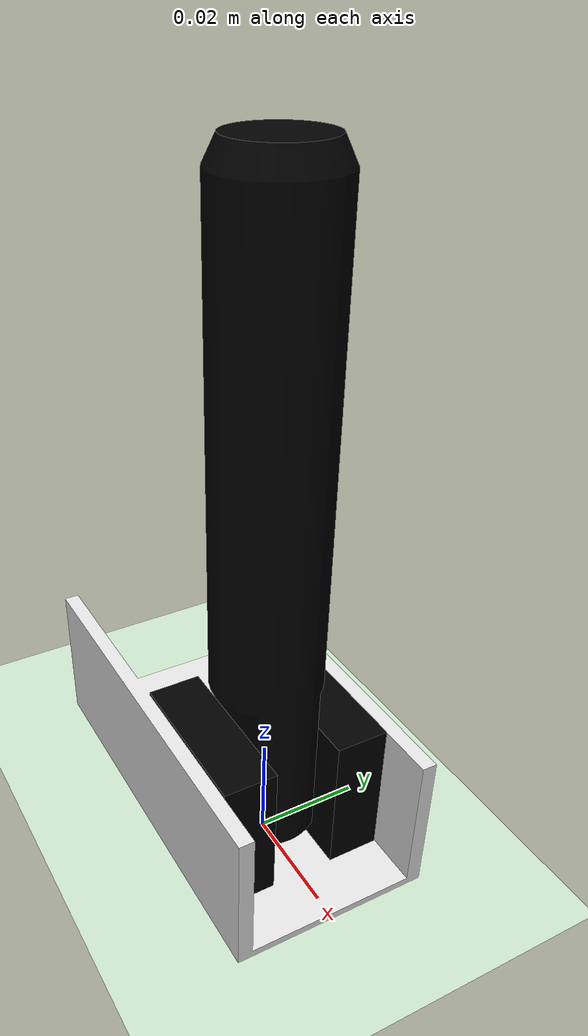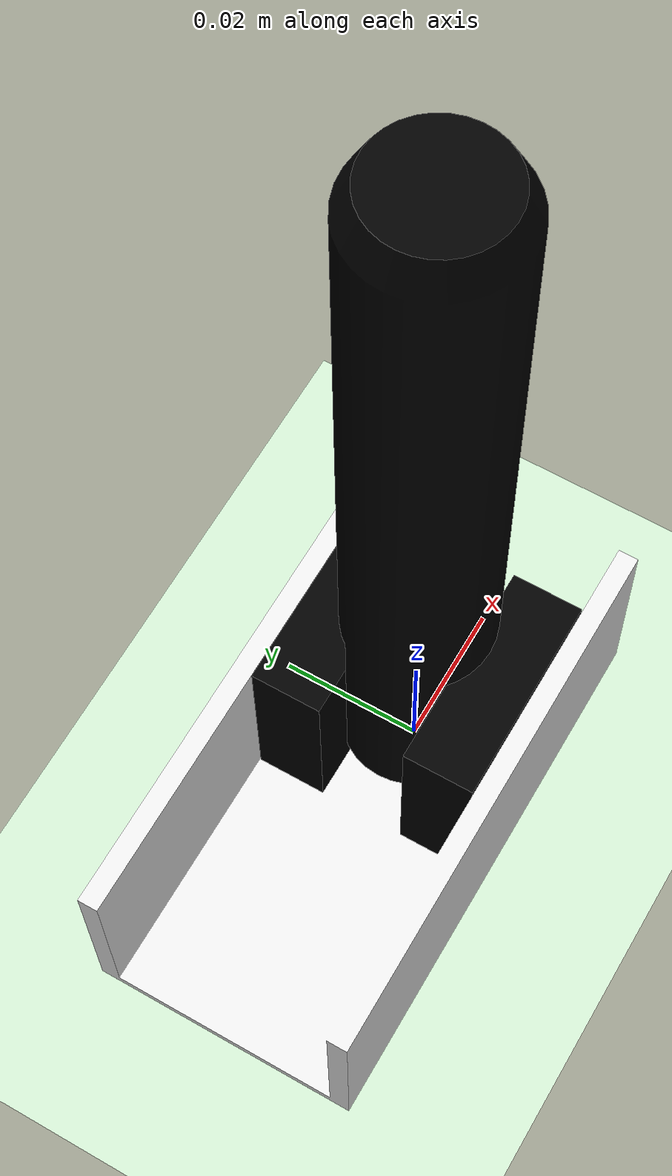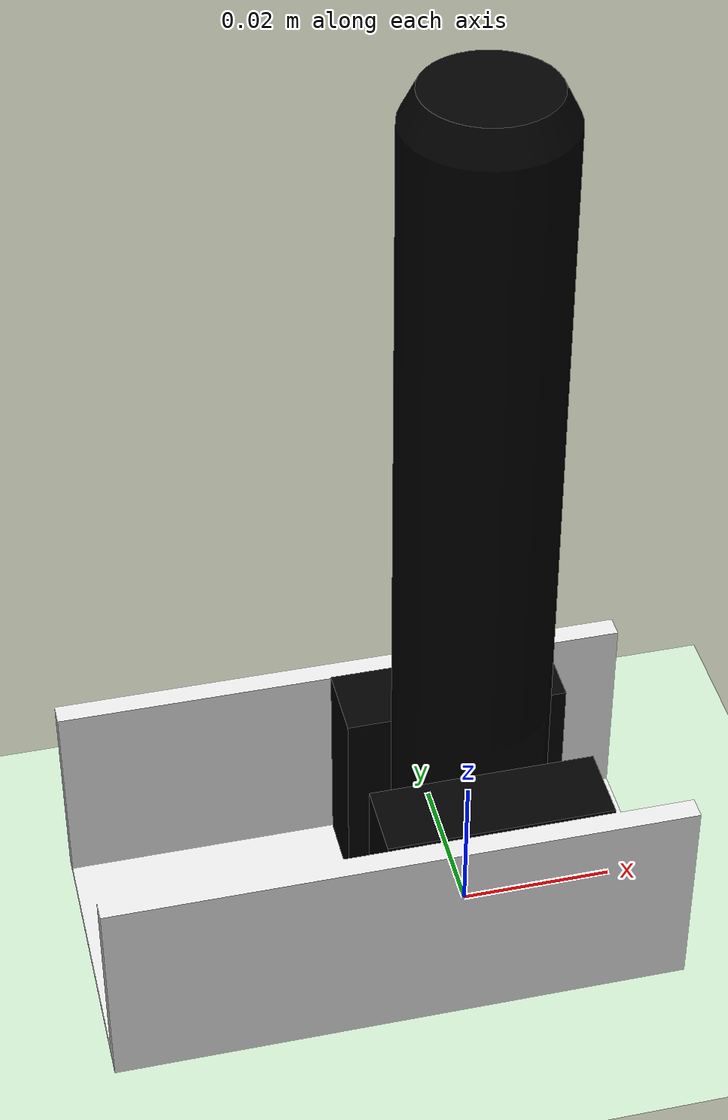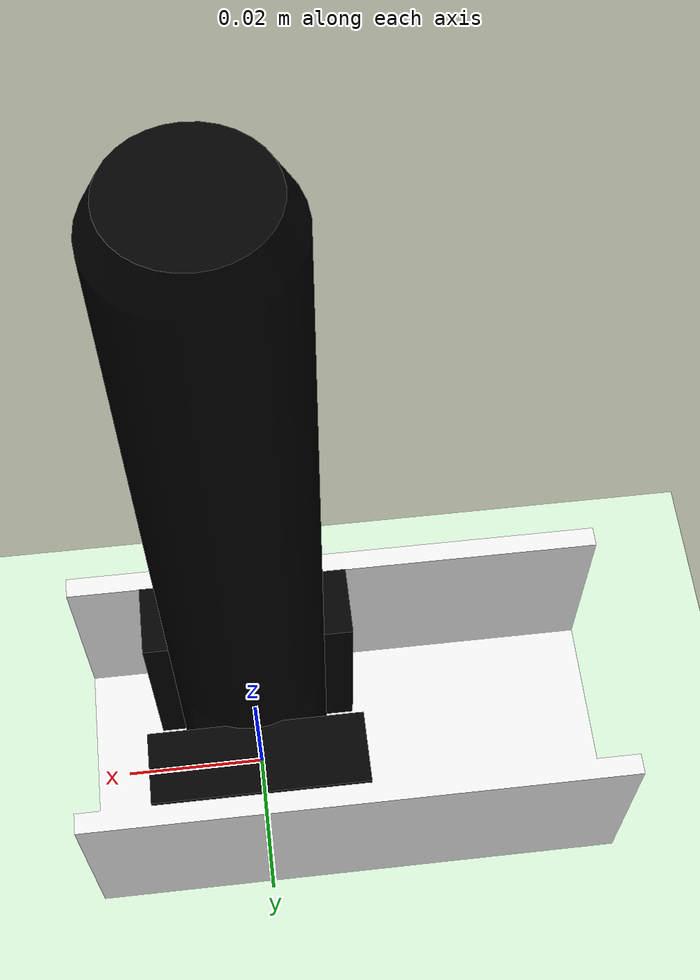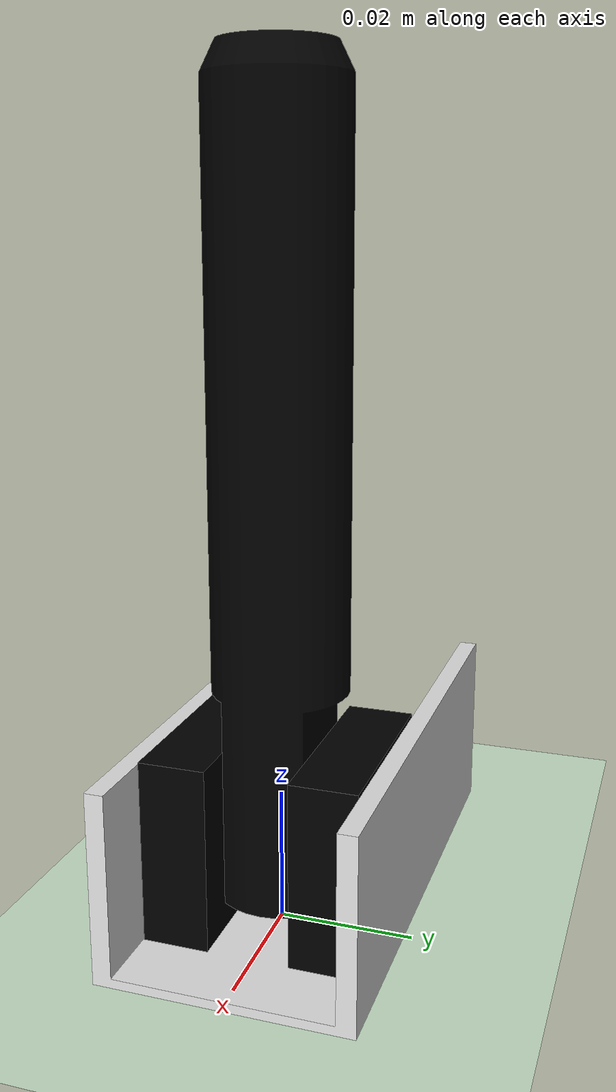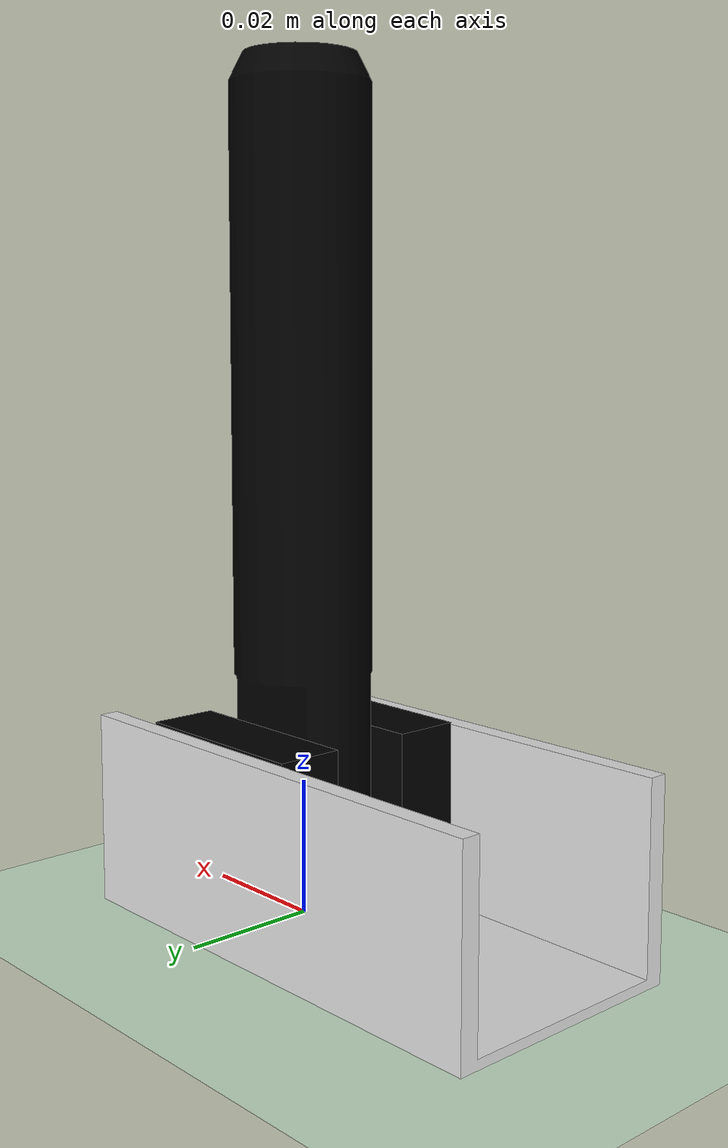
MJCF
<mujoco model="lever_basic">
    <compiler angle="radian" />
    <size njmax="500" nconmax="100" />
    <asset>
        <texture builtin="gradient" height="100" rgb1="1 1 1" rgb2="0 0 0" type="skybox" width="100"/>
        <texture builtin="flat" height="1278" mark="cross" markrgb="1 1 1" name="texgeom" random="0.01" rgb1="0.8 0.6 0.4" rgb2="0.8 0.6 0.4" type="cube" width="127"/>
        <texture builtin="checker" height="100" name="texplane" rgb1="0 0 0" rgb2="0.8 0.8 0.8" type="2d" width="100"/>
        <material name="MatPlane" reflectance="0.5" shininess="1" specular="1" texrepeat="60 60" texture="texplane"/>
        <material name="geom" texture="texgeom" texuniform="true"/>

        <mesh name="base-casing" file="base-casing.stl" scale="0.059 0.059 0.059" />
        <mesh name="base-squares-only" file="base-squares-only.stl" scale="0.059 0.059 0.059" />
        <mesh name="lever-arm-colored" file="lever-arm-colored.stl" scale="0.059 0.059 0.059" />
    </asset>
    <worldbody>
        <light cutoff="100" diffuse="1 1 1" dir="-0 0 -1.3" directional="true" exponent="1" pos="0 0 1.3" specular=".1 .1 .1"/>
        <geom conaffinity="1" condim="3" material="MatPlane" name="floor" pos="0 0 0" rgba="0.8 0.9 0.8 1" size="40 40 40" type="plane"/>

        <geom pos="0 0 0.015" type="mesh" rgba="0.9 0.9 0.9 1" mesh="base-casing" />
        <geom pos="0 0 0.015" type="mesh" rgba="0 0 0 1" mesh="base-squares-only" />
        <body name="lever_link" pos="0 0 0.015">
            <inertial pos="2.16239e-07 -7.69517e-07 0.0524899" quat="0.707302 -1.54856e-05 8.68889e-06 0.706911" mass="0.0322557" diaginertia="3.53465e-05 3.52275e-05 1.5348e-06" />
            <joint name="squares_to_lever" pos="0 0 0" axis="0 1 0" limited="true" range="-1.57 1.57" />
            <geom type="mesh" rgba="0 0 0 1" mesh="lever-arm-colored" />
        </body>
    </worldbody>
</mujoco>
